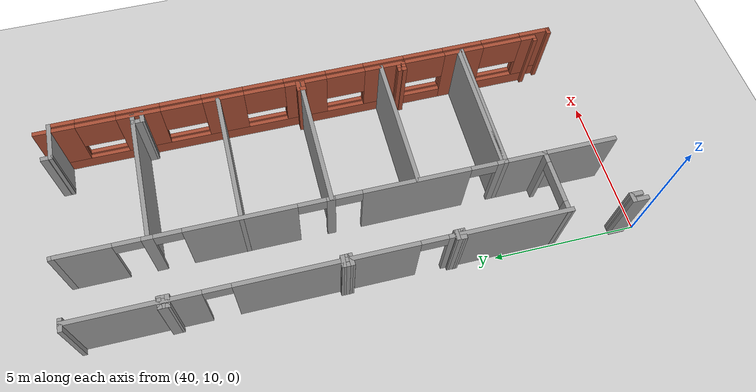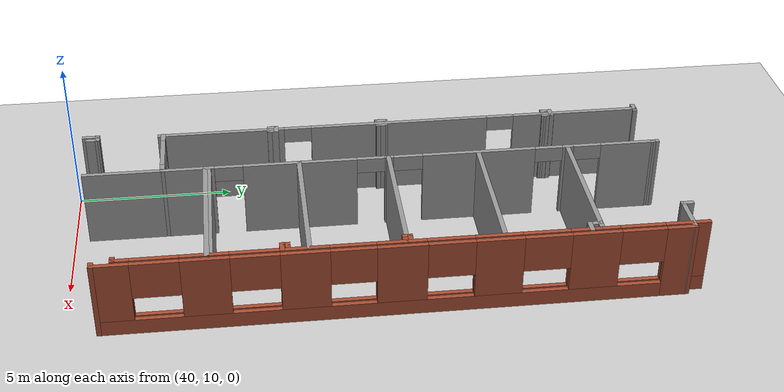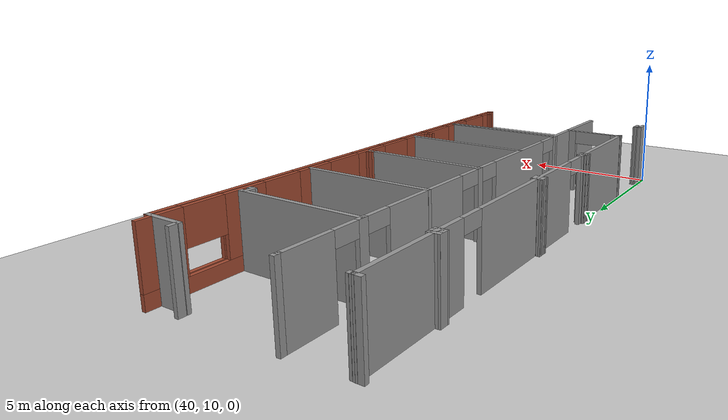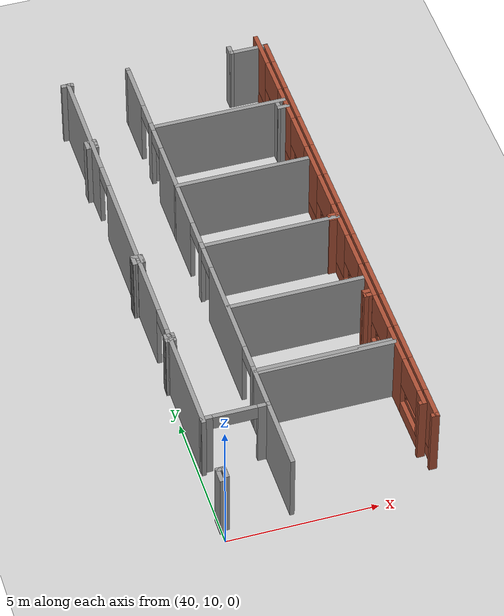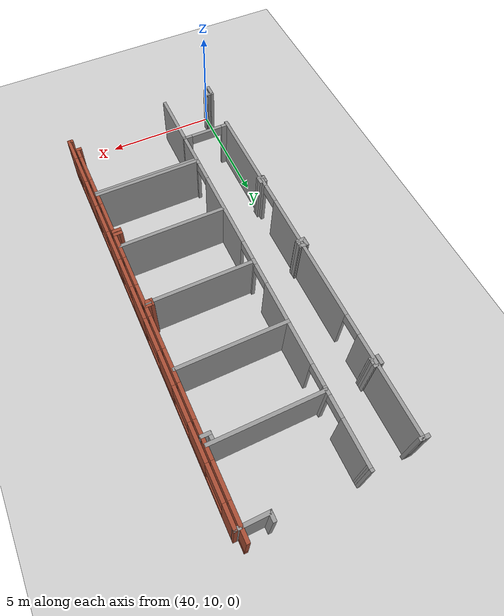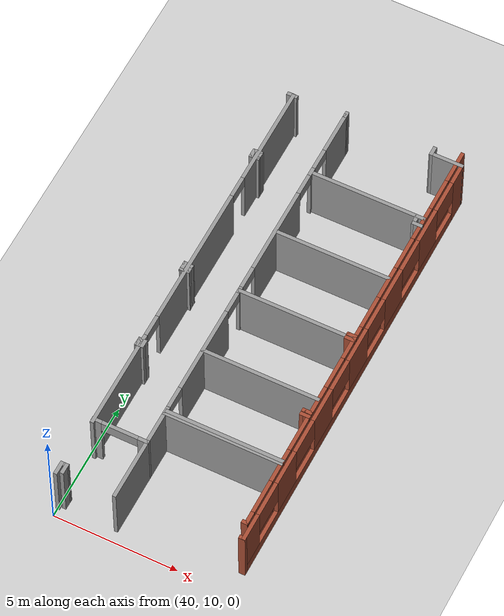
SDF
<sdf version="1.6">
 <world name="default">
  <model name="ground_plane">
   <static>1</static>
   <link name="link">
    <collision name="collision">
     <geometry><plane><normal>0 0 1</normal><size>100 100</size></plane></geometry>
     <surface><friction><ode><mu>100</mu><mu2>50</mu2></ode></friction></surface>
    </collision>
    <visual name="visual">
     <cast_shadows>0</cast_shadows>
     <geometry><plane><normal>0 0 1</normal><size>100 100</size></plane></geometry>
     <material>
      <script><uri>file://media/materials/scripts/gazebo.material</uri><name>Gazebo/Grey</name></script>
     </material>
    </visual>
   </link>
  </model>
  <model name="CVSSP">
   <pose>23.8714 24.094 0 0 -0 0</pose>
   <link name="Wall_10">
    <collision name="Wall_10_Collision">
     <geometry><box><size>0.244894 0.15 2.5</size></box></geometry>
     <pose>0 0 1.25 0 -0 0</pose>
    </collision>
    <visual name="Wall_10_Visual">
     <pose>0 0 1.25 0 -0 0</pose>
     <geometry><box><size>0.244894 0.15 2.5</size></box></geometry>
     <material>
      <script><uri>file://media/materials/scripts/gazebo.material</uri><name>Gazebo/Grey</name></script>
      <ambient>1 1 1 1</ambient>
     </material>
    </visual>
    <pose>16.3427 4.74414 0 0 -0 3.0813</pose>
   </link>
   <link name="Wall_108">
    <collision name="Wall_108_Collision">
     <geometry><box><size>0.336995 0.15 2.5</size></box></geometry>
     <pose>0 0 1.25 0 -0 0</pose>
    </collision>
    <visual name="Wall_108_Visual">
     <pose>0 0 1.25 0 -0 0</pose>
     <geometry><box><size>0.336995 0.15 2.5</size></box></geometry>
     <material>
      <script><uri>file://media/materials/scripts/gazebo.material</uri><name>Gazebo/Grey</name></script>
      <ambient>1 1 1 1</ambient>
     </material>
    </visual>
    <pose>16.2019 4.74711 0 0 -0 3.1404</pose>
   </link>
   <link name="Wall_11">
    <pose>16.2898 -3.24326 0 0 0 -1.57079</pose>
    <visual name="Wall_11_Visual_0">
     <pose>-5.93516 0 1.25 0 -0 0</pose>
     <geometry><box><size>4.26019 0.15 2.5</size></box></geometry>
     <material>
      <script><uri>file://media/materials/scripts/gazebo.material</uri><name>Gazebo/Grey</name></script>
      <ambient>0.588235 0.588235 0.588235 1</ambient>
     </material>
    </visual>
    <collision name="Wall_11_Collision_0">
     <geometry><box><size>4.26019 0.15 2.5</size></box></geometry>
     <pose>-5.93516 0 1.25 0 -0 0</pose>
    </collision>
    <visual name="Wall_11_Visual_1">
     <pose>0.054186 0 1.25 0 -0 0</pose>
     <geometry><box><size>5.9185 0.15 2.5</size></box></geometry>
     <material>
      <script><uri>file://media/materials/scripts/gazebo.material</uri><name>Gazebo/Grey</name></script>
      <ambient>0.588235 0.588235 0.588235 1</ambient>
     </material>
    </visual>
    <collision name="Wall_11_Collision_1">
     <geometry><box><size>5.9185 0.15 2.5</size></box></geometry>
     <pose>0.054186 0 1.25 0 -0 0</pose>
    </collision>
    <visual name="Wall_11_Visual_2">
     <pose>5.98935 0 1.25 0 -0 0</pose>
     <geometry><box><size>4.15182 0.15 2.5</size></box></geometry>
     <material>
      <script><uri>file://media/materials/scripts/gazebo.material</uri><name>Gazebo/Grey</name></script>
      <ambient>0.588235 0.588235 0.588235 1</ambient>
     </material>
    </visual>
    <collision name="Wall_11_Collision_2">
     <geometry><box><size>4.15182 0.15 2.5</size></box></geometry>
     <pose>5.98935 0 1.25 0 -0 0</pose>
    </collision>
    <visual name="Wall_11_Visual_3">
     <pose>-3.35506 0 2.25 0 -0 0</pose>
     <geometry><box><size>0.9 0.15 0.5</size></box></geometry>
     <material>
      <script><uri>file://media/materials/scripts/gazebo.material</uri><name>Gazebo/Grey</name></script>
      <ambient>0.588235 0.588235 0.588235 1</ambient>
     </material>
    </visual>
    <collision name="Wall_11_Collision_3">
     <geometry><box><size>0.9 0.15 0.5</size></box></geometry>
     <pose>-3.35506 0 2.25 0 -0 0</pose>
    </collision>
    <visual name="Wall_11_Visual_4">
     <pose>3.46344 0 2.25 0 -0 0</pose>
     <geometry><box><size>0.9 0.15 0.5</size></box></geometry>
     <material>
      <script><uri>file://media/materials/scripts/gazebo.material</uri><name>Gazebo/Grey</name></script>
      <ambient>0.588235 0.588235 0.588235 1</ambient>
     </material>
    </visual>
    <collision name="Wall_11_Collision_4">
     <geometry><box><size>0.9 0.15 0.5</size></box></geometry>
     <pose>3.46344 0 2.25 0 -0 0</pose>
    </collision>
   </link>
   <link name="Wall_133">
    <collision name="Wall_133_Collision">
     <geometry><box><size>4.75 0.15 2.5</size></box></geometry>
     <pose>0 0 1.25 0 -0 0</pose>
    </collision>
    <visual name="Wall_133_Visual">
     <pose>0 0 1.25 0 -0 0</pose>
     <geometry><box><size>4.75 0.15 2.5</size></box></geometry>
     <material>
      <script><uri>file://media/materials/scripts/gazebo.material</uri><name>Gazebo/Grey</name></script>
      <ambient>1 1 1 1</ambient>
     </material>
    </visual>
    <pose>20.7823 -9.67291 0 0 -0 0</pose>
   </link>
   <link name="Wall_134">
    <pose>23.0834 -2.24791 0 0 -0 1.57065</pose>
    <visual name="Wall_134_Visual_0">
     <pose>-7.19251 0 1.25 0 -0 0</pose>
     <geometry><box><size>0.601822 0.15 2.5</size></box></geometry>
     <material>
      <script><uri>file://media/materials/scripts/gazebo.material</uri><name>Gazebo/Bricks</name></script>
      <ambient>1 1 1 1</ambient>
     </material>
    </visual>
    <collision name="Wall_134_Collision_0">
     <geometry><box><size>0.601822 0.15 2.5</size></box></geometry>
     <pose>-7.19251 0 1.25 0 -0 0</pose>
    </collision>
    <visual name="Wall_134_Visual_1">
     <pose>0.300911 0 0.25 0 -0 0</pose>
     <geometry><box><size>14.385 0.15 0.5</size></box></geometry>
     <material>
      <script><uri>file://media/materials/scripts/gazebo.material</uri><name>Gazebo/Bricks</name></script>
      <ambient>1 1 1 1</ambient>
     </material>
    </visual>
    <collision name="Wall_134_Collision_1">
     <geometry><box><size>14.385 0.15 0.5</size></box></geometry>
     <pose>0.300911 0 0.25 0 -0 0</pose>
    </collision>
    <visual name="Wall_134_Visual_2">
     <pose>-4.69343 0 1.5 0 -0 0</pose>
     <geometry><box><size>1.46267 0.15 2</size></box></geometry>
     <material>
      <script><uri>file://media/materials/scripts/gazebo.material</uri><name>Gazebo/Bricks</name></script>
      <ambient>1 1 1 1</ambient>
     </material>
    </visual>
    <collision name="Wall_134_Collision_2">
     <geometry><box><size>1.46267 0.15 2</size></box></geometry>
     <pose>-4.69343 0 1.5 0 -0 0</pose>
    </collision>
    <visual name="Wall_134_Visual_3">
     <pose>-1.84084 0 1.5 0 -0 0</pose>
     <geometry><box><size>1.4912 0.15 2</size></box></geometry>
     <material>
      <script><uri>file://media/materials/scripts/gazebo.material</uri><name>Gazebo/Bricks</name></script>
      <ambient>1 1 1 1</ambient>
     </material>
    </visual>
    <collision name="Wall_134_Collision_3">
     <geometry><box><size>1.4912 0.15 2</size></box></geometry>
     <pose>-1.84084 0 1.5 0 -0 0</pose>
    </collision>
    <visual name="Wall_134_Visual_4">
     <pose>1.05448 0 1.5 0 -0 0</pose>
     <geometry><box><size>1.43416 0.15 2</size></box></geometry>
     <material>
      <script><uri>file://media/materials/scripts/gazebo.material</uri><name>Gazebo/Bricks</name></script>
      <ambient>1 1 1 1</ambient>
     </material>
    </visual>
    <collision name="Wall_134_Collision_4">
     <geometry><box><size>1.43416 0.15 2</size></box></geometry>
     <pose>1.05448 0 1.5 0 -0 0</pose>
    </collision>
    <visual name="Wall_134_Visual_5">
     <pose>3.9612 0 1.5 0 -0 0</pose>
     <geometry><box><size>1.50259 0.15 2</size></box></geometry>
     <material>
      <script><uri>file://media/materials/scripts/gazebo.material</uri><name>Gazebo/Bricks</name></script>
      <ambient>1 1 1 1</ambient>
     </material>
    </visual>
    <collision name="Wall_134_Collision_5">
     <geometry><box><size>1.50259 0.15 2</size></box></geometry>
     <pose>3.9612 0 1.5 0 -0 0</pose>
    </collision>
    <visual name="Wall_134_Visual_6">
     <pose>6.79134 0 1.5 0 -0 0</pose>
     <geometry><box><size>1.40418 0.15 2</size></box></geometry>
     <material>
      <script><uri>file://media/materials/scripts/gazebo.material</uri><name>Gazebo/Bricks</name></script>
      <ambient>1 1 1 1</ambient>
     </material>
    </visual>
    <collision name="Wall_134_Collision_6">
     <geometry><box><size>1.40418 0.15 2</size></box></geometry>
     <pose>6.79134 0 1.5 0 -0 0</pose>
    </collision>
    <visual name="Wall_134_Visual_7">
     <pose>-6.15818 0 1.9 0 -0 0</pose>
     <geometry><box><size>1.46684 0.15 1.2</size></box></geometry>
     <material>
      <script><uri>file://media/materials/scripts/gazebo.material</uri><name>Gazebo/Bricks</name></script>
      <ambient>1 1 1 1</ambient>
     </material>
    </visual>
    <collision name="Wall_134_Collision_7">
     <geometry><box><size>1.46684 0.15 1.2</size></box></geometry>
     <pose>-6.15818 0 1.9 0 -0 0</pose>
    </collision>
    <visual name="Wall_134_Visual_8">
     <pose>-3.27427 0 1.9 0 -0 0</pose>
     <geometry><box><size>1.37565 0.15 1.2</size></box></geometry>
     <material>
      <script><uri>file://media/materials/scripts/gazebo.material</uri><name>Gazebo/Bricks</name></script>
      <ambient>1 1 1 1</ambient>
     </material>
    </visual>
    <collision name="Wall_134_Collision_8">
     <geometry><box><size>1.37565 0.15 1.2</size></box></geometry>
     <pose>-3.27427 0 1.9 0 -0 0</pose>
    </collision>
    <visual name="Wall_134_Visual_9">
     <pose>-0.378919 0 1.9 0 -0 0</pose>
     <geometry><box><size>1.43264 0.15 1.2</size></box></geometry>
     <material>
      <script><uri>file://media/materials/scripts/gazebo.material</uri><name>Gazebo/Bricks</name></script>
      <ambient>1 1 1 1</ambient>
     </material>
    </visual>
    <collision name="Wall_134_Collision_9">
     <geometry><box><size>1.43264 0.15 1.2</size></box></geometry>
     <pose>-0.378919 0 1.9 0 -0 0</pose>
    </collision>
    <visual name="Wall_134_Visual_10">
     <pose>2.49073 0 1.9 0 -0 0</pose>
     <geometry><box><size>1.43834 0.15 1.2</size></box></geometry>
     <material>
      <script><uri>file://media/materials/scripts/gazebo.material</uri><name>Gazebo/Bricks</name></script>
      <ambient>1 1 1 1</ambient>
     </material>
    </visual>
    <collision name="Wall_134_Collision_10">
     <geometry><box><size>1.43834 0.15 1.2</size></box></geometry>
     <pose>2.49073 0 1.9 0 -0 0</pose>
    </collision>
    <visual name="Wall_134_Visual_11">
     <pose>5.40087 0 1.9 0 -0 0</pose>
     <geometry><box><size>1.37675 0.15 1.2</size></box></geometry>
     <material>
      <script><uri>file://media/materials/scripts/gazebo.material</uri><name>Gazebo/Bricks</name></script>
      <ambient>1 1 1 1</ambient>
     </material>
    </visual>
    <collision name="Wall_134_Collision_11">
     <geometry><box><size>1.37675 0.15 1.2</size></box></geometry>
     <pose>5.40087 0 1.9 0 -0 0</pose>
    </collision>
   </link>
   <link name="Wall_146">
    <collision name="Wall_146_Collision">
     <geometry><box><size>0.407089 0.15 2.5</size></box></geometry>
     <pose>0 0 1.25 0 -0 0</pose>
    </collision>
    <visual name="Wall_146_Visual">
     <pose>0 0 1.25 0 -0 0</pose>
     <geometry><box><size>0.407089 0.15 2.5</size></box></geometry>
     <material>
      <script><uri>file://media/materials/scripts/gazebo.material</uri><name>Gazebo/Grey</name></script>
      <ambient>1 1 1 1</ambient>
     </material>
    </visual>
    <pose>22.0521 4.82421 0 0 0 -1.57054</pose>
   </link>
   <link name="Wall_147">
    <collision name="Wall_147_Collision">
     <geometry><box><size>1.39069 0.15 2.5</size></box></geometry>
     <pose>0 0 1.25 0 -0 0</pose>
    </collision>
    <visual name="Wall_147_Visual">
     <pose>0 0 1.25 0 -0 0</pose>
     <geometry><box><size>1.39069 0.15 2.5</size></box></geometry>
     <material>
      <script><uri>file://media/materials/scripts/gazebo.material</uri><name>Gazebo/Grey</name></script>
      <ambient>0.588235 0.588235 0.588235 1</ambient>
     </material>
    </visual>
    <pose>22.6726 4.69724 0 0 -0 0.002417</pose>
   </link>
   <link name="Wall_148">
    <pose>23.2939 -4.18787 0 0 0 -1.5707</pose>
    <visual name="Wall_148_Visual_0">
     <pose>-8.49404 0 1.25 0 -0 0</pose>
     <geometry><box><size>0.935478 0.15 2.5</size></box></geometry>
     <material>
      <script><uri>file://media/materials/scripts/gazebo.material</uri><name>Gazebo/Bricks</name></script>
      <ambient>1 1 1 1</ambient>
     </material>
    </visual>
    <collision name="Wall_148_Collision_0">
     <geometry><box><size>0.935478 0.15 2.5</size></box></geometry>
     <pose>-8.49404 0 1.25 0 -0 0</pose>
    </collision>
    <visual name="Wall_148_Visual_1">
     <pose>0.467739 0 0.25 0 -0 0</pose>
     <geometry><box><size>16.9881 0.15 0.5</size></box></geometry>
     <material>
      <script><uri>file://media/materials/scripts/gazebo.material</uri><name>Gazebo/Bricks</name></script>
      <ambient>1 1 1 1</ambient>
     </material>
    </visual>
    <collision name="Wall_148_Collision_1">
     <geometry><box><size>16.9881 0.15 0.5</size></box></geometry>
     <pose>0.467739 0 0.25 0 -0 0</pose>
    </collision>
    <visual name="Wall_148_Visual_2">
     <pose>-5.90972 0 1.5 0 -0 0</pose>
     <geometry><box><size>1.49689 0.15 2</size></box></geometry>
     <material>
      <script><uri>file://media/materials/scripts/gazebo.material</uri><name>Gazebo/Bricks</name></script>
      <ambient>1 1 1 1</ambient>
     </material>
    </visual>
    <collision name="Wall_148_Collision_2">
     <geometry><box><size>1.49689 0.15 2</size></box></geometry>
     <pose>-5.90972 0 1.5 0 -0 0</pose>
    </collision>
    <visual name="Wall_148_Visual_3">
     <pose>-3.00584 0 1.5 0 -0 0</pose>
     <geometry><box><size>1.45698 0.15 2</size></box></geometry>
     <material>
      <script><uri>file://media/materials/scripts/gazebo.material</uri><name>Gazebo/Bricks</name></script>
      <ambient>1 1 1 1</ambient>
     </material>
    </visual>
    <collision name="Wall_148_Collision_3">
     <geometry><box><size>1.45698 0.15 2</size></box></geometry>
     <pose>-3.00584 0 1.5 0 -0 0</pose>
    </collision>
    <visual name="Wall_148_Visual_4">
     <pose>-0.101966 0 1.5 0 -0 0</pose>
     <geometry><box><size>1.50828 0.15 2</size></box></geometry>
     <material>
      <script><uri>file://media/materials/scripts/gazebo.material</uri><name>Gazebo/Bricks</name></script>
      <ambient>1 1 1 1</ambient>
     </material>
    </visual>
    <collision name="Wall_148_Collision_4">
     <geometry><box><size>1.50828 0.15 2</size></box></geometry>
     <pose>-0.101966 0 1.5 0 -0 0</pose>
    </collision>
    <visual name="Wall_148_Visual_5">
     <pose>2.74776 0 1.5 0 -0 0</pose>
     <geometry><box><size>1.46268 0.15 2</size></box></geometry>
     <material>
      <script><uri>file://media/materials/scripts/gazebo.material</uri><name>Gazebo/Bricks</name></script>
      <ambient>1 1 1 1</ambient>
     </material>
    </visual>
    <collision name="Wall_148_Collision_5">
     <geometry><box><size>1.46268 0.15 2</size></box></geometry>
     <pose>2.74776 0 1.5 0 -0 0</pose>
    </collision>
    <visual name="Wall_148_Visual_6">
     <pose>5.65733 0 1.5 0 -0 0</pose>
     <geometry><box><size>1.44558 0.15 2</size></box></geometry>
     <material>
      <script><uri>file://media/materials/scripts/gazebo.material</uri><name>Gazebo/Bricks</name></script>
      <ambient>1 1 1 1</ambient>
     </material>
    </visual>
    <collision name="Wall_148_Collision_6">
     <geometry><box><size>1.44558 0.15 2</size></box></geometry>
     <pose>5.65733 0 1.5 0 -0 0</pose>
    </collision>
    <visual name="Wall_148_Visual_7">
     <pose>8.39012 0 1.5 0 -0 0</pose>
     <geometry><box><size>1.14332 0.15 2</size></box></geometry>
     <material>
      <script><uri>file://media/materials/scripts/gazebo.material</uri><name>Gazebo/Bricks</name></script>
      <ambient>1 1 1 1</ambient>
     </material>
    </visual>
    <collision name="Wall_148_Collision_7">
     <geometry><box><size>1.14332 0.15 2</size></box></geometry>
     <pose>8.39012 0 1.5 0 -0 0</pose>
    </collision>
    <visual name="Wall_148_Visual_8">
     <pose>-7.34223 0 1.9 0 -0 0</pose>
     <geometry><box><size>1.36813 0.15 1.2</size></box></geometry>
     <material>
      <script><uri>file://media/materials/scripts/gazebo.material</uri><name>Gazebo/Bricks</name></script>
      <ambient>1 1 1 1</ambient>
     </material>
    </visual>
    <collision name="Wall_148_Collision_8">
     <geometry><box><size>1.36813 0.15 1.2</size></box></geometry>
     <pose>-7.34223 0 1.9 0 -0 0</pose>
    </collision>
    <visual name="Wall_148_Visual_9">
     <pose>-4.4478 0 1.9 0 -0 0</pose>
     <geometry><box><size>1.42694 0.15 1.2</size></box></geometry>
     <material>
      <script><uri>file://media/materials/scripts/gazebo.material</uri><name>Gazebo/Bricks</name></script>
      <ambient>1 1 1 1</ambient>
     </material>
    </visual>
    <collision name="Wall_148_Collision_9">
     <geometry><box><size>1.42694 0.15 1.2</size></box></geometry>
     <pose>-4.4478 0 1.9 0 -0 0</pose>
    </collision>
    <visual name="Wall_148_Visual_10">
     <pose>-1.56673 0 1.9 0 -0 0</pose>
     <geometry><box><size>1.42124 0.15 1.2</size></box></geometry>
     <material>
      <script><uri>file://media/materials/scripts/gazebo.material</uri><name>Gazebo/Bricks</name></script>
      <ambient>1 1 1 1</ambient>
     </material>
    </visual>
    <collision name="Wall_148_Collision_10">
     <geometry><box><size>1.42124 0.15 1.2</size></box></geometry>
     <pose>-1.56673 0 1.9 0 -0 0</pose>
    </collision>
    <visual name="Wall_148_Visual_11">
     <pose>1.3343 0 1.9 0 -0 0</pose>
     <geometry><box><size>1.36425 0.15 1.2</size></box></geometry>
     <material>
      <script><uri>file://media/materials/scripts/gazebo.material</uri><name>Gazebo/Bricks</name></script>
      <ambient>1 1 1 1</ambient>
     </material>
    </visual>
    <collision name="Wall_148_Collision_11">
     <geometry><box><size>1.36425 0.15 1.2</size></box></geometry>
     <pose>1.3343 0 1.9 0 -0 0</pose>
    </collision>
    <visual name="Wall_148_Visual_12">
     <pose>4.20682 0 1.9 0 -0 0</pose>
     <geometry><box><size>1.45543 0.15 1.2</size></box></geometry>
     <material>
      <script><uri>file://media/materials/scripts/gazebo.material</uri><name>Gazebo/Bricks</name></script>
      <ambient>1 1 1 1</ambient>
     </material>
    </visual>
    <collision name="Wall_148_Collision_12">
     <geometry><box><size>1.45543 0.15 1.2</size></box></geometry>
     <pose>4.20682 0 1.9 0 -0 0</pose>
    </collision>
    <visual name="Wall_148_Visual_13">
     <pose>7.09929 0 1.9 0 -0 0</pose>
     <geometry><box><size>1.43834 0.15 1.2</size></box></geometry>
     <material>
      <script><uri>file://media/materials/scripts/gazebo.material</uri><name>Gazebo/Bricks</name></script>
      <ambient>1 1 1 1</ambient>
     </material>
    </visual>
    <collision name="Wall_148_Collision_13">
     <geometry><box><size>1.43834 0.15 1.2</size></box></geometry>
     <pose>7.09929 0 1.9 0 -0 0</pose>
    </collision>
   </link>
   <link name="Wall_15">
    <pose>17.354 -11.1314 0 0 0 -0.000796</pose>
    <visual name="Wall_15_Visual_0">
     <pose>-0.94801 0 1.25 0 -0 0</pose>
     <geometry><box><size>0.40353 0.15 2.5</size></box></geometry>
     <material>
      <script><uri>file://media/materials/scripts/gazebo.material</uri><name>Gazebo/Grey</name></script>
      <ambient>0.588235 0.588235 0.588235 1</ambient>
     </material>
    </visual>
    <collision name="Wall_15_Collision_0">
     <geometry><box><size>0.40353 0.15 2.5</size></box></geometry>
     <pose>-0.94801 0 1.25 0 -0 0</pose>
    </collision>
    <visual name="Wall_15_Visual_1">
     <pose>0.933339 0 1.25 0 -0 0</pose>
     <geometry><box><size>0.432873 0.15 2.5</size></box></geometry>
     <material>
      <script><uri>file://media/materials/scripts/gazebo.material</uri><name>Gazebo/Grey</name></script>
      <ambient>0.588235 0.588235 0.588235 1</ambient>
     </material>
    </visual>
    <collision name="Wall_15_Collision_1">
     <geometry><box><size>0.432873 0.15 2.5</size></box></geometry>
     <pose>0.933339 0 1.25 0 -0 0</pose>
    </collision>
    <visual name="Wall_15_Visual_2">
     <pose>-0.014671 0 2.25 0 -0 0</pose>
     <geometry><box><size>1.46315 0.15 0.5</size></box></geometry>
     <material>
      <script><uri>file://media/materials/scripts/gazebo.material</uri><name>Gazebo/Grey</name></script>
      <ambient>0.588235 0.588235 0.588235 1</ambient>
     </material>
    </visual>
    <collision name="Wall_15_Collision_2">
     <geometry><box><size>1.46315 0.15 0.5</size></box></geometry>
     <pose>-0.014671 0 2.25 0 -0 0</pose>
    </collision>
   </link>
   <link name="Wall_150">
    <collision name="Wall_150_Collision">
     <geometry><box><size>4.80423 0.15 2.5</size></box></geometry>
     <pose>0 0 1.25 0 -0 0</pose>
    </collision>
    <visual name="Wall_150_Visual">
     <pose>0 0 1.25 0 -0 0</pose>
     <geometry><box><size>4.80423 0.15 2.5</size></box></geometry>
     <material>
      <script><uri>file://media/materials/scripts/gazebo.material</uri><name>Gazebo/Grey</name></script>
      <ambient>0.588235 0.588235 0.588235 1</ambient>
     </material>
    </visual>
    <pose>20.7564 -9.78108 0 0 -0 0.001313</pose>
   </link>
   <link name="Wall_151">
    <pose>23.0856 -11.1326 0 0 0 -1.56927</pose>
    <visual name="Wall_151_Visual_0">
     <pose>-0.991338 0 1.25 0 -0 0</pose>
     <geometry><box><size>0.876406 0.15 2.5</size></box></geometry>
     <material>
      <script><uri>file://media/materials/scripts/gazebo.material</uri><name>Gazebo/Bricks</name></script>
      <ambient>1 1 1 1</ambient>
     </material>
    </visual>
    <collision name="Wall_151_Collision_0">
     <geometry><box><size>0.876406 0.15 2.5</size></box></geometry>
     <pose>-0.991338 0 1.25 0 -0 0</pose>
    </collision>
    <visual name="Wall_151_Visual_1">
     <pose>0.438203 0 0.25 0 -0 0</pose>
     <geometry><box><size>1.98267 0.15 0.5</size></box></geometry>
     <material>
      <script><uri>file://media/materials/scripts/gazebo.material</uri><name>Gazebo/Bricks</name></script>
      <ambient>1 1 1 1</ambient>
     </material>
    </visual>
    <collision name="Wall_151_Collision_1">
     <geometry><box><size>1.98267 0.15 0.5</size></box></geometry>
     <pose>0.438203 0 0.25 0 -0 0</pose>
    </collision>
    <visual name="Wall_151_Visual_2">
     <pose>1.14601 0 1.5 0 -0 0</pose>
     <geometry><box><size>0.567066 0.15 2</size></box></geometry>
     <material>
      <script><uri>file://media/materials/scripts/gazebo.material</uri><name>Gazebo/Bricks</name></script>
      <ambient>1 1 1 1</ambient>
     </material>
    </visual>
    <collision name="Wall_151_Collision_2">
     <geometry><box><size>0.567066 0.15 2</size></box></geometry>
     <pose>1.14601 0 1.5 0 -0 0</pose>
    </collision>
    <visual name="Wall_151_Visual_3">
     <pose>0.15467 0 1.9 0 -0 0</pose>
     <geometry><box><size>1.41561 0.15 1.2</size></box></geometry>
     <material>
      <script><uri>file://media/materials/scripts/gazebo.material</uri><name>Gazebo/Bricks</name></script>
      <ambient>1 1 1 1</ambient>
     </material>
    </visual>
    <collision name="Wall_151_Collision_3">
     <geometry><box><size>1.41561 0.15 1.2</size></box></geometry>
     <pose>0.15467 0 1.9 0 -0 0</pose>
    </collision>
   </link>
   <link name="Wall_152">
    <collision name="Wall_152_Collision">
     <geometry><box><size>0.258168 0.15 2.5</size></box></geometry>
     <pose>0 0 1.25 0 -0 0</pose>
    </collision>
    <visual name="Wall_152_Visual">
     <pose>0 0 1.25 0 -0 0</pose>
     <geometry><box><size>0.258168 0.15 2.5</size></box></geometry>
     <material>
      <script><uri>file://media/materials/scripts/gazebo.material</uri><name>Gazebo/Bricks</name></script>
      <ambient>1 1 1 1</ambient>
     </material>
    </visual>
    <pose>23.0336 -12.4904 0 0 -0 3.14159</pose>
   </link>
   <link name="Wall_166">
    <collision name="Wall_166_Collision">
     <geometry><box><size>4.75 0.15 2.5</size></box></geometry>
     <pose>0 0 1.25 0 -0 0</pose>
    </collision>
    <visual name="Wall_166_Visual">
     <pose>0 0 1.25 0 -0 0</pose>
     <geometry><box><size>4.75 0.15 2.5</size></box></geometry>
     <material>
      <script><uri>file://media/materials/scripts/gazebo.material</uri><name>Gazebo/Grey</name></script>
      <ambient>0.588235 0.588235 0.588235 1</ambient>
     </material>
    </visual>
    <pose>20.7514 -6.79871 0 0 -0 0</pose>
   </link>
   <link name="Wall_168">
    <collision name="Wall_168_Collision">
     <geometry><box><size>4.75 0.15 2.5</size></box></geometry>
     <pose>0 0 1.25 0 -0 0</pose>
    </collision>
    <visual name="Wall_168_Visual">
     <pose>0 0 1.25 0 -0 0</pose>
     <geometry><box><size>4.75 0.15 2.5</size></box></geometry>
     <material>
      <script><uri>file://media/materials/scripts/gazebo.material</uri><name>Gazebo/Grey</name></script>
      <ambient>0.588235 0.588235 0.588235 1</ambient>
     </material>
    </visual>
    <pose>20.7514 -3.92247 0 0 -0 0</pose>
   </link>
   <link name="Wall_170">
    <collision name="Wall_170_Collision">
     <geometry><box><size>4.75 0.15 2.5</size></box></geometry>
     <pose>0 0 1.25 0 -0 0</pose>
    </collision>
    <visual name="Wall_170_Visual">
     <pose>0 0 1.25 0 -0 0</pose>
     <geometry><box><size>4.75 0.15 2.5</size></box></geometry>
     <material>
      <script><uri>file://media/materials/scripts/gazebo.material</uri><name>Gazebo/Grey</name></script>
      <ambient>0.588235 0.588235 0.588235 1</ambient>
     </material>
    </visual>
    <pose>20.7313 -1.006 0 0 -0 0</pose>
   </link>
   <link name="Wall_172">
    <collision name="Wall_172_Collision">
     <geometry><box><size>4.75 0.15 2.5</size></box></geometry>
     <pose>0 0 1.25 0 -0 0</pose>
    </collision>
    <visual name="Wall_172_Visual">
     <pose>0 0 1.25 0 -0 0</pose>
     <geometry><box><size>4.75 0.15 2.5</size></box></geometry>
     <material>
      <script><uri>file://media/materials/scripts/gazebo.material</uri><name>Gazebo/Grey</name></script>
      <ambient>0.588235 0.588235 0.588235 1</ambient>
     </material>
    </visual>
    <pose>20.7514 1.93058 0 0 -0 0</pose>
   </link>
   <link name="Wall_174">
    <collision name="Wall_174_Collision">
     <geometry><box><size>2.59517 0.15 2.5</size></box></geometry>
     <pose>0 0 1.25 0 -0 0</pose>
    </collision>
    <visual name="Wall_174_Visual">
     <pose>0 0 1.25 0 -0 0</pose>
     <geometry><box><size>2.59517 0.15 2.5</size></box></geometry>
     <material>
      <script><uri>file://media/materials/scripts/gazebo.material</uri><name>Gazebo/Grey</name></script>
      <ambient>0.588235 0.588235 0.588235 1</ambient>
     </material>
    </visual>
    <pose>18.4291 -12.3547 0 0 0 -1.5705</pose>
   </link>
   <link name="Wall_198">
    <collision name="Wall_198_Collision">
     <geometry><box><size>0.264462 0.15 2.5</size></box></geometry>
     <pose>0 0 1.25 0 -0 0</pose>
    </collision>
    <visual name="Wall_198_Visual">
     <pose>0 0 1.25 0 -0 0</pose>
     <geometry><box><size>0.264462 0.15 2.5</size></box></geometry>
     <material>
      <script><uri>file://media/materials/scripts/gazebo.material</uri><name>Gazebo/Bricks</name></script>
      <ambient>1 1 1 1</ambient>
     </material>
    </visual>
    <pose>23.2376 -13.0908 0 0 -0 0</pose>
   </link>
   <link name="Wall_67">
    <pose>18.433 -3.16776 0 0 -0 1.57026</pose>
    <visual name="Wall_67_Visual_0">
     <pose>-7.18077 0 1.25 0 -0 0</pose>
     <geometry><box><size>1.71739 0.15 2.5</size></box></geometry>
     <material>
      <script><uri>file://media/materials/scripts/gazebo.material</uri><name>Gazebo/Grey</name></script>
      <ambient>0.588235 0.588235 0.588235 1</ambient>
     </material>
    </visual>
    <collision name="Wall_67_Collision_0">
     <geometry><box><size>1.71739 0.15 2.5</size></box></geometry>
     <pose>-7.18077 0 1.25 0 -0 0</pose>
    </collision>
    <visual name="Wall_67_Visual_1">
     <pose>-3.59924 0 1.25 0 -0 0</pose>
     <geometry><box><size>3.64566 0.15 2.5</size></box></geometry>
     <material>
      <script><uri>file://media/materials/scripts/gazebo.material</uri><name>Gazebo/Grey</name></script>
      <ambient>0.588235 0.588235 0.588235 1</ambient>
     </material>
    </visual>
    <collision name="Wall_67_Collision_1">
     <geometry><box><size>3.64566 0.15 2.5</size></box></geometry>
     <pose>-3.59924 0 1.25 0 -0 0</pose>
    </collision>
    <visual name="Wall_67_Visual_2">
     <pose>-0.733075 0 1.25 0 -0 0</pose>
     <geometry><box><size>0.286679 0.15 2.5</size></box></geometry>
     <material>
      <script><uri>file://media/materials/scripts/gazebo.material</uri><name>Gazebo/Grey</name></script>
      <ambient>0.588235 0.588235 0.588235 1</ambient>
     </material>
    </visual>
    <collision name="Wall_67_Collision_2">
     <geometry><box><size>0.286679 0.15 2.5</size></box></geometry>
     <pose>-0.733075 0 1.25 0 -0 0</pose>
    </collision>
    <visual name="Wall_67_Visual_3">
     <pose>2.19347 0 1.25 0 -0 0</pose>
     <geometry><box><size>3.68595 0.15 2.5</size></box></geometry>
     <material>
      <script><uri>file://media/materials/scripts/gazebo.material</uri><name>Gazebo/Grey</name></script>
      <ambient>0.588235 0.588235 0.588235 1</ambient>
     </material>
    </visual>
    <collision name="Wall_67_Collision_3">
     <geometry><box><size>3.68595 0.15 2.5</size></box></geometry>
     <pose>2.19347 0 1.25 0 -0 0</pose>
    </collision>
    <visual name="Wall_67_Visual_4">
     <pose>5.11998 0 1.25 0 -0 0</pose>
     <geometry><box><size>0.36709 0.15 2.5</size></box></geometry>
     <material>
      <script><uri>file://media/materials/scripts/gazebo.material</uri><name>Gazebo/Grey</name></script>
      <ambient>0.588235 0.588235 0.588235 1</ambient>
     </material>
    </visual>
    <collision name="Wall_67_Collision_4">
     <geometry><box><size>0.36709 0.15 2.5</size></box></geometry>
     <pose>5.11998 0 1.25 0 -0 0</pose>
    </collision>
    <visual name="Wall_67_Visual_5">
     <pose>7.1215 0 1.25 0 -0 0</pose>
     <geometry><box><size>1.83593 0.15 2.5</size></box></geometry>
     <material>
      <script><uri>file://media/materials/scripts/gazebo.material</uri><name>Gazebo/Grey</name></script>
      <ambient>0.588235 0.588235 0.588235 1</ambient>
     </material>
    </visual>
    <collision name="Wall_67_Collision_5">
     <geometry><box><size>1.83593 0.15 2.5</size></box></geometry>
     <pose>7.1215 0 1.25 0 -0 0</pose>
    </collision>
    <visual name="Wall_67_Visual_6">
     <pose>-5.87207 0 2.25 0 -0 0</pose>
     <geometry><box><size>0.9 0.15 0.5</size></box></geometry>
     <material>
      <script><uri>file://media/materials/scripts/gazebo.material</uri><name>Gazebo/Grey</name></script>
      <ambient>0.588235 0.588235 0.588235 1</ambient>
     </material>
    </visual>
    <collision name="Wall_67_Collision_6">
     <geometry><box><size>0.9 0.15 0.5</size></box></geometry>
     <pose>-5.87207 0 2.25 0 -0 0</pose>
    </collision>
    <visual name="Wall_67_Visual_7">
     <pose>-1.32641 0 2.25 0 -0 0</pose>
     <geometry><box><size>0.9 0.15 0.5</size></box></geometry>
     <material>
      <script><uri>file://media/materials/scripts/gazebo.material</uri><name>Gazebo/Grey</name></script>
      <ambient>0.588235 0.588235 0.588235 1</ambient>
     </material>
    </visual>
    <collision name="Wall_67_Collision_7">
     <geometry><box><size>0.9 0.15 0.5</size></box></geometry>
     <pose>-1.32641 0 2.25 0 -0 0</pose>
    </collision>
    <visual name="Wall_67_Visual_8">
     <pose>-0.119622 0 2.25 0 -0 0</pose>
     <geometry><box><size>0.940227 0.15 0.5</size></box></geometry>
     <material>
      <script><uri>file://media/materials/scripts/gazebo.material</uri><name>Gazebo/Grey</name></script>
      <ambient>0.588235 0.588235 0.588235 1</ambient>
     </material>
    </visual>
    <collision name="Wall_67_Collision_8">
     <geometry><box><size>0.940227 0.15 0.5</size></box></geometry>
     <pose>-0.119622 0 2.25 0 -0 0</pose>
    </collision>
    <visual name="Wall_67_Visual_9">
     <pose>4.48644 0 2.25 0 -0 0</pose>
     <geometry><box><size>0.9 0.15 0.5</size></box></geometry>
     <material>
      <script><uri>file://media/materials/scripts/gazebo.material</uri><name>Gazebo/Grey</name></script>
      <ambient>0.588235 0.588235 0.588235 1</ambient>
     </material>
    </visual>
    <collision name="Wall_67_Collision_9">
     <geometry><box><size>0.9 0.15 0.5</size></box></geometry>
     <pose>4.48644 0 2.25 0 -0 0</pose>
    </collision>
    <visual name="Wall_67_Visual_10">
     <pose>5.75353 0 2.25 0 -0 0</pose>
     <geometry><box><size>0.9 0.15 0.5</size></box></geometry>
     <material>
      <script><uri>file://media/materials/scripts/gazebo.material</uri><name>Gazebo/Grey</name></script>
      <ambient>0.588235 0.588235 0.588235 1</ambient>
     </material>
    </visual>
    <collision name="Wall_67_Collision_10">
     <geometry><box><size>0.9 0.15 0.5</size></box></geometry>
     <pose>5.75353 0 2.25 0 -0 0</pose>
    </collision>
   </link>
   <link name="Wall_729">
    <collision name="Wall_729_Collision">
     <geometry><box><size>0.409263 0.15 2.5</size></box></geometry>
     <pose>0 0 1.25 0 -0 0</pose>
    </collision>
    <visual name="Wall_729_Visual">
     <pose>0 0 1.25 0 -0 0</pose>
     <geometry><box><size>0.409263 0.15 2.5</size></box></geometry>
     <material>
      <script><uri>file://media/materials/scripts/gazebo.material</uri><name>Gazebo/Grey</name></script>
      <ambient>1 1 1 1</ambient>
     </material>
    </visual>
    <pose>16.3949 1.72388 0 0 -0 1.57329</pose>
   </link>
   <link name="Wall_730">
    <collision name="Wall_730_Collision">
     <geometry><box><size>0.423174 0.15 2.5</size></box></geometry>
     <pose>0 0 1.25 0 -0 0</pose>
    </collision>
    <visual name="Wall_730_Visual">
     <pose>0 0 1.25 0 -0 0</pose>
     <geometry><box><size>0.423174 0.15 2.5</size></box></geometry>
     <material>
      <script><uri>file://media/materials/scripts/gazebo.material</uri><name>Gazebo/Grey</name></script>
      <ambient>1 1 1 1</ambient>
     </material>
    </visual>
    <pose>16.2619 1.84596 0 0 0 -3.08621</pose>
   </link>
   <link name="Wall_731">
    <collision name="Wall_731_Collision">
     <geometry><box><size>0.388455 0.15 2.5</size></box></geometry>
     <pose>0 0 1.25 0 -0 0</pose>
    </collision>
    <visual name="Wall_731_Visual">
     <pose>0 0 1.25 0 -0 0</pose>
     <geometry><box><size>0.388455 0.15 2.5</size></box></geometry>
     <material>
      <script><uri>file://media/materials/scripts/gazebo.material</uri><name>Gazebo/Grey</name></script>
      <ambient>1 1 1 1</ambient>
     </material>
    </visual>
    <pose>16.1221 1.71917 0 0 0 -1.56809</pose>
   </link>
   <link name="Wall_732">
    <collision name="Wall_732_Collision">
     <geometry><box><size>0.422814 0.15 2.5</size></box></geometry>
     <pose>0 0 1.25 0 -0 0</pose>
    </collision>
    <visual name="Wall_732_Visual">
     <pose>0 0 1.25 0 -0 0</pose>
     <geometry><box><size>0.422814 0.15 2.5</size></box></geometry>
     <material>
      <script><uri>file://media/materials/scripts/gazebo.material</uri><name>Gazebo/Grey</name></script>
      <ambient>1 1 1 1</ambient>
     </material>
    </visual>
    <pose>16.2588 1.5934 0 0 0 -0.020841</pose>
   </link>
   <link name="Wall_736">
    <collision name="Wall_736_Collision">
     <geometry><box><size>0.438586 0.15 2.5</size></box></geometry>
     <pose>0 0 1.25 0 -0 0</pose>
    </collision>
    <visual name="Wall_736_Visual">
     <pose>0 0 1.25 0 -0 0</pose>
     <geometry><box><size>0.438586 0.15 2.5</size></box></geometry>
     <material>
      <script><uri>file://media/materials/scripts/gazebo.material</uri><name>Gazebo/Grey</name></script>
      <ambient>1 1 1 1</ambient>
     </material>
    </visual>
    <pose>22.952 1.6054 0 0 -0 3.14159</pose>
   </link>
   <link name="Wall_737">
    <collision name="Wall_737_Collision">
     <geometry><box><size>0.457198 0.15 2.5</size></box></geometry>
     <pose>0 0 1.25 0 -0 0</pose>
    </collision>
    <visual name="Wall_737_Visual">
     <pose>0 0 1.25 0 -0 0</pose>
     <geometry><box><size>0.457198 0.15 2.5</size></box></geometry>
     <material>
      <script><uri>file://media/materials/scripts/gazebo.material</uri><name>Gazebo/Grey</name></script>
      <ambient>1 1 1 1</ambient>
     </material>
    </visual>
    <pose>22.8034 1.75843 0 0 -0 1.59936</pose>
   </link>
   <link name="Wall_739">
    <collision name="Wall_739_Collision">
     <geometry><box><size>0.412351 0.15 2.5</size></box></geometry>
     <pose>0 0 1.25 0 -0 0</pose>
    </collision>
    <visual name="Wall_739_Visual">
     <pose>0 0 1.25 0 -0 0</pose>
     <geometry><box><size>0.412351 0.15 2.5</size></box></geometry>
     <material>
      <script><uri>file://media/materials/scripts/gazebo.material</uri><name>Gazebo/Grey</name></script>
      <ambient>1 1 1 1</ambient>
     </material>
    </visual>
    <pose>16.2625 -3.77466 0 0 0 -0.066568</pose>
   </link>
   <link name="Wall_740">
    <collision name="Wall_740_Collision">
     <geometry><box><size>0.395485 0.15 2.5</size></box></geometry>
     <pose>0 0 1.25 0 -0 0</pose>
    </collision>
    <visual name="Wall_740_Visual">
     <pose>0 0 1.25 0 -0 0</pose>
     <geometry><box><size>0.395485 0.15 2.5</size></box></geometry>
     <material>
      <script><uri>file://media/materials/scripts/gazebo.material</uri><name>Gazebo/Grey</name></script>
      <ambient>1 1 1 1</ambient>
     </material>
    </visual>
    <pose>16.3981 -3.90583 0 0 0 -1.5351</pose>
   </link>
   <link name="Wall_741">
    <collision name="Wall_741_Collision">
     <geometry><box><size>0.42166 0.15 2.5</size></box></geometry>
     <pose>0 0 1.25 0 -0 0</pose>
    </collision>
    <visual name="Wall_741_Visual">
     <pose>0 0 1.25 0 -0 0</pose>
     <geometry><box><size>0.42166 0.15 2.5</size></box></geometry>
     <material>
      <script><uri>file://media/materials/scripts/gazebo.material</uri><name>Gazebo/Grey</name></script>
      <ambient>1 1 1 1</ambient>
     </material>
    </visual>
    <pose>16.2669 -4.03264 0 0 0 -3.10935</pose>
   </link>
   <link name="Wall_742">
    <collision name="Wall_742_Collision">
     <geometry><box><size>0.421096 0.15 2.5</size></box></geometry>
     <pose>0 0 1.25 0 -0 0</pose>
    </collision>
    <visual name="Wall_742_Visual">
     <pose>0 0 1.25 0 -0 0</pose>
     <geometry><box><size>0.421096 0.15 2.5</size></box></geometry>
     <material>
      <script><uri>file://media/materials/scripts/gazebo.material</uri><name>Gazebo/Grey</name></script>
      <ambient>1 1 1 1</ambient>
     </material>
    </visual>
    <pose>16.1314 -3.90146 0 0 -0 1.5708</pose>
   </link>
   <link name="Wall_745">
    <collision name="Wall_745_Collision">
     <geometry><box><size>0.4145 0.15 2.5</size></box></geometry>
     <pose>0 0 1.25 0 -0 0</pose>
    </collision>
    <visual name="Wall_745_Visual">
     <pose>0 0 1.25 0 -0 0</pose>
     <geometry><box><size>0.4145 0.15 2.5</size></box></geometry>
     <material>
      <script><uri>file://media/materials/scripts/gazebo.material</uri><name>Gazebo/Bricks</name></script>
      <ambient>1 1 1 1</ambient>
     </material>
    </visual>
    <pose>22.9482 -3.80796 0 0 -0 3.14159</pose>
   </link>
   <link name="Wall_746">
    <collision name="Wall_746_Collision">
     <geometry><box><size>0.31675 0.15 2.5</size></box></geometry>
     <pose>0 0 1.25 0 -0 0</pose>
    </collision>
    <visual name="Wall_746_Visual">
     <pose>0 0 1.25 0 -0 0</pose>
     <geometry><box><size>0.31675 0.15 2.5</size></box></geometry>
     <material>
      <script><uri>file://media/materials/scripts/gazebo.material</uri><name>Gazebo/Bricks</name></script>
      <ambient>1 1 1 1</ambient>
     </material>
    </visual>
    <pose>22.816 -3.89133 0 0 0 -1.5708</pose>
   </link>
   <link name="Wall_747">
    <collision name="Wall_747_Collision">
     <geometry><box><size>0.420495 0.15 2.5</size></box></geometry>
     <pose>0 0 1.25 0 -0 0</pose>
    </collision>
    <visual name="Wall_747_Visual">
     <pose>0 0 1.25 0 -0 0</pose>
     <geometry><box><size>0.420495 0.15 2.5</size></box></geometry>
     <material>
      <script><uri>file://media/materials/scripts/gazebo.material</uri><name>Gazebo/Bricks</name></script>
      <ambient>1 1 1 1</ambient>
     </material>
    </visual>
    <pose>22.9511 -3.97471 0 0 -0 0</pose>
   </link>
   <link name="Wall_749">
    <collision name="Wall_749_Collision">
     <geometry><box><size>0.354987 0.15 2.5</size></box></geometry>
     <pose>0 0 1.25 0 -0 0</pose>
    </collision>
    <visual name="Wall_749_Visual">
     <pose>0 0 1.25 0 -0 0</pose>
     <geometry><box><size>0.354987 0.15 2.5</size></box></geometry>
     <material>
      <script><uri>file://media/materials/scripts/gazebo.material</uri><name>Gazebo/Grey</name></script>
      <ambient>1 1 1 1</ambient>
     </material>
    </visual>
    <pose>16.2901 -7.41966 0 0 -0 0</pose>
   </link>
   <link name="Wall_750">
    <collision name="Wall_750_Collision">
     <geometry><box><size>0.368212 0.15 2.5</size></box></geometry>
     <pose>0 0 1.25 0 -0 0</pose>
    </collision>
    <visual name="Wall_750_Visual">
     <pose>0 0 1.25 0 -0 0</pose>
     <geometry><box><size>0.368212 0.15 2.5</size></box></geometry>
     <material>
      <script><uri>file://media/materials/scripts/gazebo.material</uri><name>Gazebo/Grey</name></script>
      <ambient>1 1 1 1</ambient>
     </material>
    </visual>
    <pose>16.3926 -7.52876 0 0 0 -1.5708</pose>
   </link>
   <link name="Wall_751">
    <collision name="Wall_751_Collision">
     <geometry><box><size>0.361703 0.15 2.5</size></box></geometry>
     <pose>0 0 1.25 0 -0 0</pose>
    </collision>
    <visual name="Wall_751_Visual">
     <pose>0 0 1.25 0 -0 0</pose>
     <geometry><box><size>0.361703 0.15 2.5</size></box></geometry>
     <material>
      <script><uri>file://media/materials/scripts/gazebo.material</uri><name>Gazebo/Grey</name></script>
      <ambient>1 1 1 1</ambient>
     </material>
    </visual>
    <pose>16.2868 -7.63787 0 0 -0 3.14159</pose>
   </link>
   <link name="Wall_752">
    <collision name="Wall_752_Collision">
     <geometry><box><size>0.368313 0.15 2.5</size></box></geometry>
     <pose>0 0 1.25 0 -0 0</pose>
    </collision>
    <visual name="Wall_752_Visual">
     <pose>0 0 1.25 0 -0 0</pose>
     <geometry><box><size>0.368313 0.15 2.5</size></box></geometry>
     <material>
      <script><uri>file://media/materials/scripts/gazebo.material</uri><name>Gazebo/Grey</name></script>
      <ambient>1 1 1 1</ambient>
     </material>
    </visual>
    <pose>16.1843 -7.52876 0 0 -0 1.5405</pose>
   </link>
   <link name="Wall_755">
    <collision name="Wall_755_Collision">
     <geometry><box><size>0.407888 0.15 2.5</size></box></geometry>
     <pose>0 0 1.25 0 -0 0</pose>
    </collision>
    <visual name="Wall_755_Visual">
     <pose>0 0 1.25 0 -0 0</pose>
     <geometry><box><size>0.407888 0.15 2.5</size></box></geometry>
     <material>
      <script><uri>file://media/materials/scripts/gazebo.material</uri><name>Gazebo/Bricks</name></script>
      <ambient>1 1 1 1</ambient>
     </material>
    </visual>
    <pose>22.9423 -7.41966 0 0 -0 3.14159</pose>
   </link>
   <link name="Wall_756">
    <collision name="Wall_756_Collision">
     <geometry><box><size>0.322052 0.15 2.5</size></box></geometry>
     <pose>0 0 1.25 0 -0 0</pose>
    </collision>
    <visual name="Wall_756_Visual">
     <pose>0 0 1.25 0 -0 0</pose>
     <geometry><box><size>0.322052 0.15 2.5</size></box></geometry>
     <material>
      <script><uri>file://media/materials/scripts/gazebo.material</uri><name>Gazebo/Bricks</name></script>
      <ambient>1 1 1 1</ambient>
     </material>
    </visual>
    <pose>22.8134 -7.50562 0 0 0 -1.5708</pose>
   </link>
   <link name="Wall_757">
    <collision name="Wall_757_Collision">
     <geometry><box><size>0.4145 0.15 2.5</size></box></geometry>
     <pose>0 0 1.25 0 -0 0</pose>
    </collision>
    <visual name="Wall_757_Visual">
     <pose>0 0 1.25 0 -0 0</pose>
     <geometry><box><size>0.4145 0.15 2.5</size></box></geometry>
     <material>
      <script><uri>file://media/materials/scripts/gazebo.material</uri><name>Gazebo/Bricks</name></script>
      <ambient>1 1 1 1</ambient>
     </material>
    </visual>
    <pose>22.9456 -7.59158 0 0 -0 0</pose>
   </link>
   <link name="Wall_774">
    <collision name="Wall_774_Collision">
     <geometry><box><size>0.452872 0.15 2.5</size></box></geometry>
     <pose>0 0 1.25 0 -0 0</pose>
    </collision>
    <visual name="Wall_774_Visual">
     <pose>0 0 1.25 0 -0 0</pose>
     <geometry><box><size>0.452872 0.15 2.5</size></box></geometry>
     <material>
      <script><uri>file://media/materials/scripts/gazebo.material</uri><name>Gazebo/Grey</name></script>
      <ambient>1 1 1 1</ambient>
     </material>
    </visual>
    <pose>16.3299 -13.4259 0 0 -0 1.56799</pose>
   </link>
   <link name="Wall_775">
    <collision name="Wall_775_Collision">
     <geometry><box><size>0.347714 0.15 2.5</size></box></geometry>
     <pose>0 0 1.25 0 -0 0</pose>
    </collision>
    <visual name="Wall_775_Visual">
     <pose>0 0 1.25 0 -0 0</pose>
     <geometry><box><size>0.347714 0.15 2.5</size></box></geometry>
     <material>
      <script><uri>file://media/materials/scripts/gazebo.material</uri><name>Gazebo/Grey</name></script>
      <ambient>1 1 1 1</ambient>
     </material>
    </visual>
    <pose>16.2315 -13.2745 0 0 -0 3.14159</pose>
   </link>
   <link name="Wall_776">
    <collision name="Wall_776_Collision">
     <geometry><box><size>0.575913 0.15 2.5</size></box></geometry>
     <pose>0 0 1.25 0 -0 0</pose>
    </collision>
    <visual name="Wall_776_Visual">
     <pose>0 0 1.25 0 -0 0</pose>
     <geometry><box><size>0.575913 0.15 2.5</size></box></geometry>
     <material>
      <script><uri>file://media/materials/scripts/gazebo.material</uri><name>Gazebo/Grey</name></script>
      <ambient>1 1 1 1</ambient>
     </material>
    </visual>
    <pose>16.1326 -13.4874 0 0 0 -1.5708</pose>
   </link>
   <link name="Wall_82">
    <collision name="Wall_82_Collision">
     <geometry><box><size>0.279389 0.15 2.5</size></box></geometry>
     <pose>0 0 1.25 0 -0 0</pose>
    </collision>
    <visual name="Wall_82_Visual">
     <pose>0 0 1.25 0 -0 0</pose>
     <geometry><box><size>0.279389 0.15 2.5</size></box></geometry>
     <material>
      <script><uri>file://media/materials/scripts/gazebo.material</uri><name>Gazebo/Grey</name></script>
      <ambient>1 1 1 1</ambient>
     </material>
    </visual>
    <pose>18.435 4.85136 0 0 -0 1.60628</pose>
   </link>
   <static>1</static>
  </model>
 </world>
</sdf>
